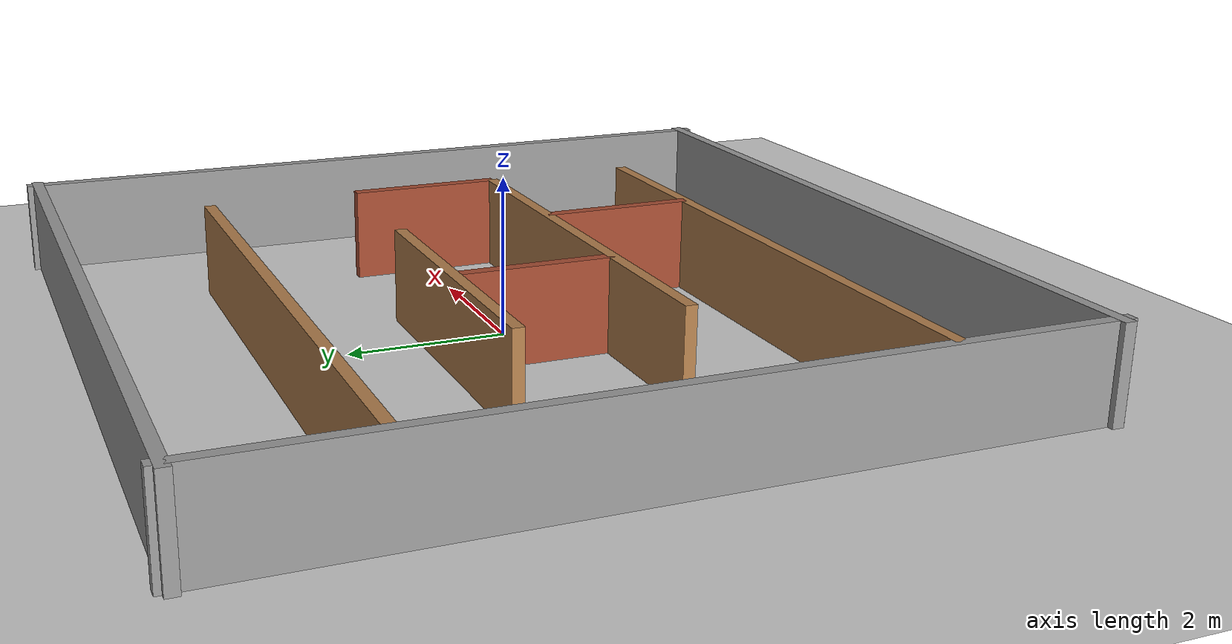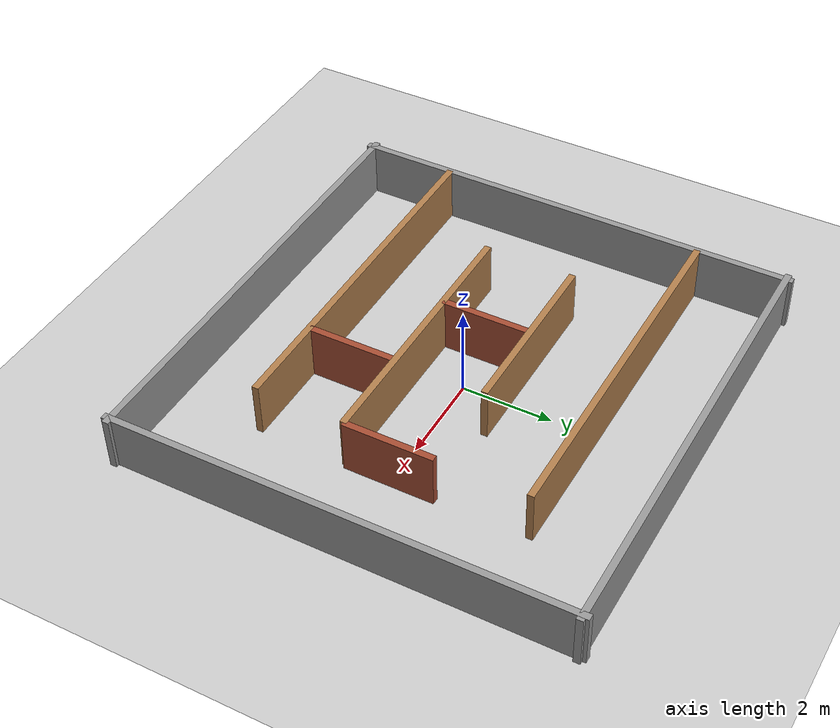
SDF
<?xml version="1.0" ?>
<sdf version="1.6">
  <world name="maze_world">

    <include>
      <uri>model://ground_plane</uri>
    </include>

    <include>
      <uri>model://sun</uri>
    </include>

    <!-- ===== OUTER BOUNDARY (10m x 10m, walls at ±5m) ===== -->

    <model name="wall_south">
      <static>true</static>
      <pose>0 -5 0.6 0 0 0</pose>
      <link name="link">
        <collision name="collision">
          <geometry><box><size>10.3 0.15 1.2</size></box></geometry>
        </collision>
        <visual name="visual">
          <geometry><box><size>10.3 0.15 1.2</size></box></geometry>
          <material><script>
            <uri>file://media/materials/scripts/gazebo.material</uri>
            <name>Gazebo/Grey</name>
          </script></material>
        </visual>
      </link>
    </model>

    <model name="wall_north">
      <static>true</static>
      <pose>0 5 0.6 0 0 0</pose>
      <link name="link">
        <collision name="collision">
          <geometry><box><size>10.3 0.15 1.2</size></box></geometry>
        </collision>
        <visual name="visual">
          <geometry><box><size>10.3 0.15 1.2</size></box></geometry>
          <material><script>
            <uri>file://media/materials/scripts/gazebo.material</uri>
            <name>Gazebo/Grey</name>
          </script></material>
        </visual>
      </link>
    </model>

    <model name="wall_west">
      <static>true</static>
      <pose>-5 0 0.6 0 0 0</pose>
      <link name="link">
        <collision name="collision">
          <geometry><box><size>0.15 10.3 1.2</size></box></geometry>
        </collision>
        <visual name="visual">
          <geometry><box><size>0.15 10.3 1.2</size></box></geometry>
          <material><script>
            <uri>file://media/materials/scripts/gazebo.material</uri>
            <name>Gazebo/Grey</name>
          </script></material>
        </visual>
      </link>
    </model>

    <model name="wall_east">
      <static>true</static>
      <pose>5 0 0.6 0 0 0</pose>
      <link name="link">
        <collision name="collision">
          <geometry><box><size>0.15 10.3 1.2</size></box></geometry>
        </collision>
        <visual name="visual">
          <geometry><box><size>0.15 10.3 1.2</size></box></geometry>
          <material><script>
            <uri>file://media/materials/scripts/gazebo.material</uri>
            <name>Gazebo/Grey</name>
          </script></material>
        </visual>
      </link>
    </model>

    <!-- H1: y=-3, x=-5 to x=3  (blocks row0-row1 in cols 0-3, gap at col4) -->
    <model name="wall_h1">
      <static>true</static>
      <pose>-1 -3 0.6 0 0 0</pose>
      <link name="link">
        <collision name="collision">
          <geometry><box><size>8 0.15 1.2</size></box></geometry>
        </collision>
        <visual name="visual">
          <geometry><box><size>8 0.15 1.2</size></box></geometry>
          <material><script>
            <uri>file://media/materials/scripts/gazebo.material</uri>
            <name>Gazebo/Wood</name>
          </script></material>
        </visual>
      </link>
    </model>

    <!-- H2: y=-1, x=-3 to x=3  (blocks row1-row2 in cols 1-3, gaps at col0 and col4) -->
    <model name="wall_h2">
      <static>true</static>
      <pose>0 -1 0.6 0 0 0</pose>
      <link name="link">
        <collision name="collision">
          <geometry><box><size>6 0.15 1.2</size></box></geometry>
        </collision>
        <visual name="visual">
          <geometry><box><size>6 0.15 1.2</size></box></geometry>
          <material><script>
            <uri>file://media/materials/scripts/gazebo.material</uri>
            <name>Gazebo/Wood</name>
          </script></material>
        </visual>
      </link>
    </model>

    <!-- H3: y=1, x=-3 to x=1  (blocks row2-row3 in cols 1-2; gaps at col0, col3, col4) -->
    <model name="wall_h3">
      <static>true</static>
      <pose>-1 1 0.6 0 0 0</pose>
      <link name="link">
        <collision name="collision">
          <geometry><box><size>4 0.15 1.2</size></box></geometry>
        </collision>
        <visual name="visual">
          <geometry><box><size>4 0.15 1.2</size></box></geometry>
          <material><script>
            <uri>file://media/materials/scripts/gazebo.material</uri>
            <name>Gazebo/Wood</name>
          </script></material>
        </visual>
      </link>
    </model>

    <!-- H4: y=3, x=-5 to x=3  (blocks row3-row4 in cols 0-3, gap at col4) -->
    <model name="wall_h4">
      <static>true</static>
      <pose>-1 3 0.6 0 0 0</pose>
      <link name="link">
        <collision name="collision">
          <geometry><box><size>8 0.15 1.2</size></box></geometry>
        </collision>
        <visual name="visual">
          <geometry><box><size>8 0.15 1.2</size></box></geometry>
          <material><script>
            <uri>file://media/materials/scripts/gazebo.material</uri>
            <name>Gazebo/Wood</name>
          </script></material>
        </visual>
      </link>
    </model>

    <!-- V1: x=3, y=-1 to y=1  (blocks col3-col4 in row2) -->
    <model name="wall_v1">
      <static>true</static>
      <pose>3 0 0.6 0 0 0</pose>
      <link name="link">
        <collision name="collision">
          <geometry><box><size>0.15 2 1.2</size></box></geometry>
        </collision>
        <visual name="visual">
          <geometry><box><size>0.15 2 1.2</size></box></geometry>
          <material><script>
            <uri>file://media/materials/scripts/gazebo.material</uri>
            <name>Gazebo/Bricks</name>
          </script></material>
        </visual>
      </link>
    </model>

    <!-- V2: x=1, y=-3 to y=-1  (blocks col2-col3 in row1, splits row1 into left/right clusters) -->
    <model name="wall_v2">
      <static>true</static>
      <pose>1 -2 0.6 0 0 0</pose>
      <link name="link">
        <collision name="collision">
          <geometry><box><size>0.15 2 1.2</size></box></geometry>
        </collision>
        <visual name="visual">
          <geometry><box><size>0.15 2 1.2</size></box></geometry>
          <material><script>
            <uri>file://media/materials/scripts/gazebo.material</uri>
            <name>Gazebo/Bricks</name>
          </script></material>
        </visual>
      </link>
    </model>

    <!-- V3: x=-1, y=-1 to y=1  (blocks col1-col2 in row2, creates dead-end at (1,2)) -->
    <model name="wall_v3">
      <static>true</static>
      <pose>-1 0 0.6 0 0 0</pose>
      <link name="link">
        <collision name="collision">
          <geometry><box><size>0.15 2 1.2</size></box></geometry>
        </collision>
        <visual name="visual">
          <geometry><box><size>0.15 2 1.2</size></box></geometry>
          <material><script>
            <uri>file://media/materials/scripts/gazebo.material</uri>
            <name>Gazebo/Bricks</name>
          </script></material>
        </visual>
      </link>
    </model>

  </world>
</sdf>
